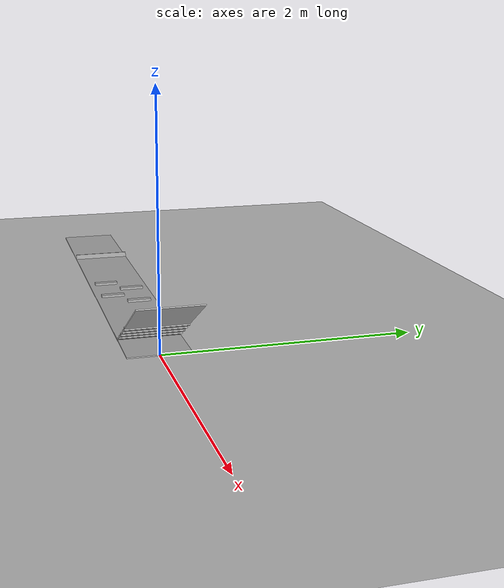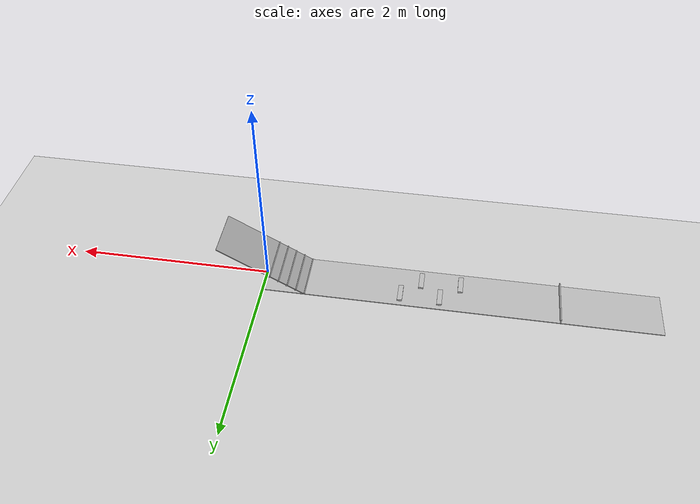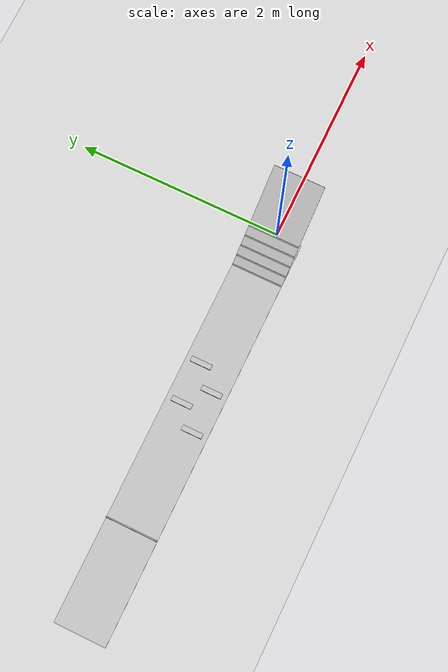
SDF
<?xml version="1.0" ?>
<sdf version="1.5">
  <world name="iit_default">
    <include>
      <uri>model://ground_plane</uri>
    </include>

    <include>
      <uri>model://sun</uri>
    </include>

    <model name="walk-area">
      <static>true</static>

      <pose>-2 0 0 0 0 0</pose>

      <link name="link">
        <collision name="collision">
          <geometry>
            <box>
              <size>4 0.5 0.01</size>
            </box>
          </geometry>

          <surface>
            <friction>
              <ode>
                <mu>1</mu>
                <mu2>1</mu2>
              </ode>
            </friction>
          </surface>
        </collision>

        <visual name="visual">
          <geometry>
            <box>
              <size>4 0.5 0.01</size>
            </box>
          </geometry>

          <material>
            <script>
            <uri>model://iit_gazebo_models/materials/scripts</uri>
            <uri>model://iit_gazebo_models/materials/textures</uri>
            <name>iit_gazebo_models/ground</name>
            </script>
          </material>

        </visual>
      </link>
    </model>

    <model name="obstacle">
      <static>true</static>

      <pose>-3 0 0 0 0 0</pose>

      <link name="link">
        <collision name="collision">
          <geometry>
            <box>
              <size>0.01 0.5 0.1</size>
            </box>
          </geometry>

          <surface>
            <friction>
              <ode>
                <mu>1</mu>
                <mu2>1</mu2>
              </ode>
            </friction>
          </surface>
        </collision>

        <visual name="visual">
          <geometry>
            <box>
              <size>0.01 0.5 0.1</size>
            </box>
          </geometry>
        </visual>
      </link>
    </model>

    <model name="brick-1">
      <static>true</static>

      <pose>-2.0 -0.1 0 0 0 0</pose>

      <link name="link">
        <collision name="collision">
          <geometry>
            <box>
              <size>0.05 0.20 0.05</size>
            </box>
          </geometry>

          <surface>
            <friction>
              <ode>
                <mu>1</mu>
                <mu2>1</mu2>
              </ode>
            </friction>
          </surface>
        </collision>

        <visual name="visual">
          <geometry>
            <box>
              <size>0.05 0.20 0.05</size>
            </box>
          </geometry>
        </visual>
      </link>
    </model>

    <model name="brick-2">
      <static>true</static>

      <pose>-1.8 0.1 0 0 0 0</pose>

      <link name="link">
        <collision name="collision">
          <geometry>
            <box>
              <size>0.05 0.20 0.05</size>
            </box>
          </geometry>

          <surface>
            <friction>
              <ode>
                <mu>1</mu>
                <mu2>1</mu2>
              </ode>
            </friction>
          </surface>
        </collision>

        <visual name="visual">
          <geometry>
            <box>
              <size>0.05 0.20 0.05</size>
            </box>
          </geometry>
        </visual>
      </link>
    </model>

    <model name="brick-3">
      <static>true</static>

      <pose>-1.6 -0.1 0 0 0 0</pose>

      <link name="link">
        <collision name="collision">
          <geometry>
            <box>
              <size>0.05 0.20 0.05</size>
            </box>
          </geometry>

          <surface>
            <friction>
              <ode>
                <mu>1</mu>
                <mu2>1</mu2>
              </ode>
            </friction>
          </surface>
        </collision>

        <visual name="visual">
          <geometry>
            <box>
              <size>0.05 0.20 0.05</size>
            </box>
          </geometry>
        </visual>
      </link>
    </model>

    <model name="brick-4">
      <static>true</static>

      <pose>-1.4 0.1 0 0 0 0</pose>

      <link name="link">
        <collision name="collision">
          <geometry>
            <box>
              <size>0.05 0.20 0.05</size>
            </box>
          </geometry>

          <surface>
            <friction>
              <ode>
                <mu>1</mu>
                <mu2>1</mu2>
              </ode>
            </friction>
          </surface>
        </collision>

        <visual name="visual">
          <geometry>
            <box>
              <size>0.05 0.20 0.05</size>
            </box>
          </geometry>
        </visual>
      </link>
    </model>

    <model name="ramp">
      <static>true</static>

      <pose>0 0 0.25 0 -0.523599 0</pose>

      <link name="link">
        <collision name="collision">
          <geometry>
            <box>
              <size>1 0.5 0.01</size>
            </box>
          </geometry>

          <surface>
            <friction>
              <ode>
                <mu>1</mu>
                <mu2>1</mu2>
              </ode>
            </friction>
          </surface>
        </collision>

        <visual name="visual">
          <geometry>
            <box>
              <size>1 0.5 0.01</size>
            </box>
          </geometry>

          <material>
            <script>
            <uri>model://iit_gazebo_models/materials/scripts</uri>
            <uri>model://iit_gazebo_models/materials/textures</uri>
            <name>iit_gazebo_models/ground</name>
            </script>
          </material>

          </visual>
      </link>
    </model>

    <model name="box-1">
      <static>true</static>

      <pose>-0.43 0.0 0.0 0 -0.523599 0</pose>

      <link name="link">
        <collision name="collision">
          <geometry>
            <box>
              <size>0.01 0.5 0.03</size>
            </box>
          </geometry>

          <surface>
            <friction>
              <ode>
                <mu>1</mu>
                <mu2>1</mu2>
              </ode>
            </friction>
          </surface>
        </collision>

        <visual name="visual">
          <geometry>
            <box>
              <size>0.01 0.5 0.03</size>
            </box>
          </geometry>
        </visual>
      </link>
    </model>

    <model name="box-2">
      <static>true</static>

      <pose>-0.3464 0.0 0.05 0 -0.523599 0</pose>

      <link name="link">
        <collision name="collision">
          <geometry>
            <box>
              <size>0.01 0.5 0.03</size>
            </box>
          </geometry>

          <surface>
            <friction>
              <ode>
                <mu>1</mu>
                <mu2>1</mu2>
              </ode>
            </friction>
          </surface>
        </collision>

        <visual name="visual">
          <geometry>
            <box>
              <size>0.01 0.5 0.03</size>
            </box>
          </geometry>
        </visual>
      </link>
    </model>
    <model name="box-3">
      <static>true</static>

      <pose>-0.2598 0.0 0.1 0 -0.523599 0</pose>

      <link name="link">
        <collision name="collision">
          <geometry>
            <box>
              <size>0.01 0.5 0.03</size>
            </box>
          </geometry>

          <surface>
            <friction>
              <ode>
                <mu>1</mu>
                <mu2>1</mu2>
              </ode>
            </friction>
          </surface>
        </collision>

        <visual name="visual">
          <geometry>
            <box>
              <size>0.01 0.5 0.03</size>
            </box>
          </geometry>
        </visual>
      </link>
    </model>
    <model name="box-4">
      <static>true</static>

      <pose>-0.1732 0.0 0.15 0 -0.523599 0</pose>

      <link name="link">
        <collision name="collision">
          <geometry>
            <box>
              <size>0.01 0.5 0.03</size>
            </box>
          </geometry>

          <surface>
            <friction>
              <ode>
                <mu>1</mu>
                <mu2>1</mu2>
              </ode>
            </friction>
          </surface>
        </collision>

        <visual name="visual">
          <geometry>
            <box>
              <size>0.01 0.5 0.03</size>
            </box>
          </geometry>
        </visual>
      </link>
    </model>
    <model name="box-5">
      <static>true</static>

      <pose>-0.0866 0.0 0.2 0 -0.523599 0</pose>

      <link name="link">
        <collision name="collision">
          <geometry>
            <box>
              <size>0.01 0.5 0.03</size>
            </box>
          </geometry>

          <surface>
            <friction>
              <ode>
                <mu>1</mu>
                <mu2>1</mu2>
              </ode>
            </friction>
          </surface>
        </collision>

        <visual name="visual">
          <geometry>
            <box>
              <size>0.01 0.5 0.03</size>
            </box>
          </geometry>
        </visual>
      </link>
    </model>
  </world>
</sdf>
